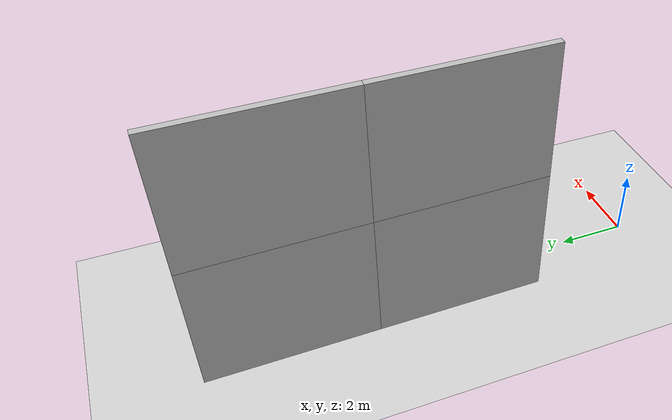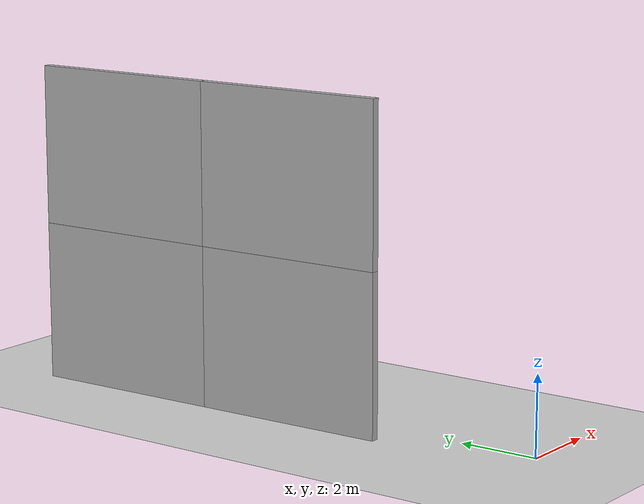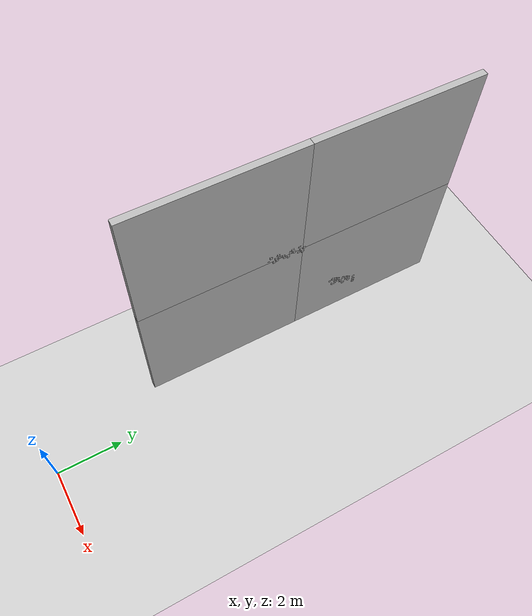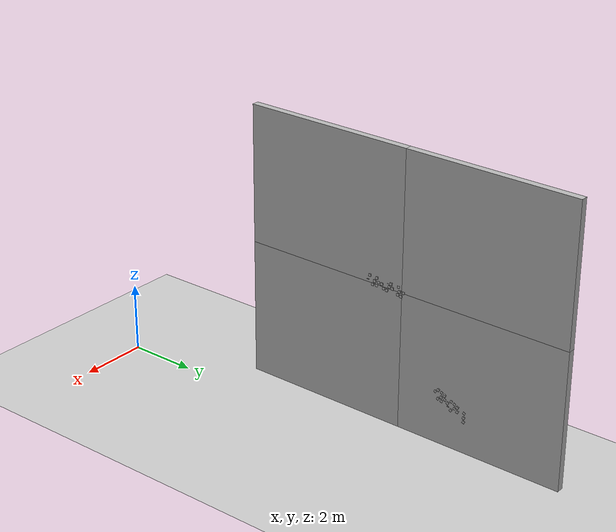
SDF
<sdf version="1.4">
 <world name="default">
  <model name="ground_plane">
   <static>1</static>
   <link name="link">
    <collision name="collision">
     <geometry><plane><normal>0 0 1</normal><size>100 100</size></plane></geometry>
     <surface><friction><ode><mu>100</mu><mu2>50</mu2></ode></friction></surface>
    </collision>
    <visual name="visual">
     <cast_shadows>0</cast_shadows>
     <geometry><plane><normal>0 0 1</normal><size>100 100</size></plane></geometry>
     <material>
      <script><uri>file://media/materials/scripts/gazebo.material</uri><name>Gazebo/Grey</name></script>
     </material>
    </visual>
    <velocity_decay><linear>0</linear><angular>0</angular></velocity_decay>
   </link>
  </model>
  <model name="mud_box_0">
   <static>1</static>
   <link name="link">
    <collision name="collision"><geometry><box><size>8 10 0.2</size></box></geometry></collision>
    <visual name="visual_1">
     <pose>-2 2.5 0 0 -0 0</pose>
     <cast_shadows>0</cast_shadows>
     <geometry><box><size>4 5 0.2</size></box></geometry>
     <material>
      <script>
       <uri>model://mud_box/materials/scripts</uri>
       <uri>model://mud_box/materials/textures</uri>
       <name>vrc/mud</name>
      </script>
     </material>
    </visual>
    <visual name="visual_2">
     <pose>2 2.5 0 0 -0 0</pose>
     <cast_shadows>0</cast_shadows>
     <geometry><box><size>4 5 0.2</size></box></geometry>
     <material>
      <script>
       <uri>model://mud_box/materials/scripts</uri>
       <uri>model://mud_box/materials/textures</uri>
       <name>vrc/mud</name>
      </script>
     </material>
    </visual>
    <visual name="visual_3">
     <pose>2 -2.5 0 0 -0 0</pose>
     <cast_shadows>0</cast_shadows>
     <geometry><box><size>4 5 0.2</size></box></geometry>
     <material>
      <script>
       <uri>model://mud_box/materials/scripts</uri>
       <uri>model://mud_box/materials/textures</uri>
       <name>vrc/mud</name>
      </script>
     </material>
    </visual>
    <visual name="visual_4">
     <pose>-2 -2.5 0 0 -0 0</pose>
     <cast_shadows>0</cast_shadows>
     <geometry><box><size>4 5 0.2</size></box></geometry>
     <material>
      <script>
       <uri>model://mud_box/materials/scripts</uri>
       <uri>model://mud_box/materials/textures</uri>
       <name>vrc/mud</name>
      </script>
     </material>
    </visual>
    <velocity_decay><linear>0</linear><angular>0</angular></velocity_decay>
   </link>
   <pose>-1.2094 8.64163 4.04199 0.9875 1.562 -2.15241</pose>
  </model>
  <model name="frc2016_roughterrain_0">
   <static>1</static>
   <link name="link">
    <visual name="platform">
     <pose>0 0 0.08269 0 -0 0</pose>
     <geometry><box><size>1.27 0.5969 0.003175</size></box></geometry>
    </visual>
    <collision name="platform">
     <pose>0 0 0.08269 0 -0 0</pose>
     <geometry><box><size>1.27 0.5969 0.003175</size></box></geometry>
    </collision>
    <visual name="row1_block1_sm">
     <pose>0.51435 0.1143 0.09698 0 -0 0</pose>
     <geometry><box><size>0.0762 0.0762 0.0254</size></box></geometry>
    </visual>
    <collision name="row1_block1_sm">
     <pose>0.51435 0.1143 0.09698 0 -0 0</pose>
     <geometry><box><size>0.0762 0.0762 0.0254</size></box></geometry>
    </collision>
    <visual name="row1_block2_lg">
     <pose>0.40005 0.1143 0.12238 0 -0 0</pose>
     <geometry><box><size>0.0762 0.0762 0.0762</size></box></geometry>
    </visual>
    <collision name="row1_block2_lg">
     <pose>0.40005 0.1143 0.12238 0 -0 0</pose>
     <geometry><box><size>0.0762 0.0762 0.0762</size></box></geometry>
    </collision>
    <visual name="row1_block3_md">
     <pose>0.28575 0.1143 0.10968 0 -0 0</pose>
     <geometry><box><size>0.0762 0.0762 0.0508</size></box></geometry>
    </visual>
    <collision name="row1_block3_md">
     <pose>0.28575 0.1143 0.10968 0 -0 0</pose>
     <geometry><box><size>0.0762 0.0762 0.0508</size></box></geometry>
    </collision>
    <visual name="row1_block4_sm">
     <pose>0.17145 0.1143 0.09698 0 -0 0</pose>
     <geometry><box><size>0.0762 0.0762 0.0254</size></box></geometry>
    </visual>
    <collision name="row1_block4_sm">
     <pose>0.17145 0.1143 0.09698 0 -0 0</pose>
     <geometry><box><size>0.0762 0.0762 0.0254</size></box></geometry>
    </collision>
    <visual name="row1_block5_md">
     <pose>0.05715 0.1143 0.10968 0 -0 0</pose>
     <geometry><box><size>0.0762 0.0762 0.0508</size></box></geometry>
    </visual>
    <collision name="row1_block5_md">
     <pose>0.05715 0.1143 0.10968 0 -0 0</pose>
     <geometry><box><size>0.0762 0.0762 0.0508</size></box></geometry>
    </collision>
    <visual name="row1_block6_lg">
     <pose>-0.05715 0.1143 0.12238 0 -0 0</pose>
     <geometry><box><size>0.0762 0.0762 0.0762</size></box></geometry>
    </visual>
    <collision name="row1_block6_lg">
     <pose>-0.05715 0.1143 0.12238 0 -0 0</pose>
     <geometry><box><size>0.0762 0.0762 0.0762</size></box></geometry>
    </collision>
    <visual name="row1_block7_sm">
     <pose>-0.17145 0.1143 0.09698 0 -0 0</pose>
     <geometry><box><size>0.0762 0.0762 0.0254</size></box></geometry>
    </visual>
    <collision name="row1_block7_sm">
     <pose>-0.17145 0.1143 0.09698 0 -0 0</pose>
     <geometry><box><size>0.0762 0.0762 0.0254</size></box></geometry>
    </collision>
    <visual name="row1_block8_sm">
     <pose>-0.28575 0.1143 0.09698 0 -0 0</pose>
     <geometry><box><size>0.0762 0.0762 0.0254</size></box></geometry>
    </visual>
    <collision name="row1_block8_sm">
     <pose>-0.28575 0.1143 0.09698 0 -0 0</pose>
     <geometry><box><size>0.0762 0.0762 0.0254</size></box></geometry>
    </collision>
    <visual name="row1_block9_md">
     <pose>-0.40005 0.1143 0.10968 0 -0 0</pose>
     <geometry><box><size>0.0762 0.0762 0.0508</size></box></geometry>
    </visual>
    <collision name="row1_block9_md">
     <pose>-0.40005 0.1143 0.10968 0 -0 0</pose>
     <geometry><box><size>0.0762 0.0762 0.0508</size></box></geometry>
    </collision>
    <visual name="row1_block10_lg">
     <pose>-0.51435 0.1143 0.12238 0 -0 0</pose>
     <geometry><box><size>0.0762 0.0762 0.0762</size></box></geometry>
    </visual>
    <collision name="row1_block10_lg">
     <pose>-0.51435 0.1143 0.12238 0 -0 0</pose>
     <geometry><box><size>0.0762 0.0762 0.0762</size></box></geometry>
    </collision>
    <visual name="row2_block1_md">
     <pose>0.5715 0 0.10968 0 -0 0</pose>
     <geometry><box><size>0.0762 0.0762 0.0508</size></box></geometry>
    </visual>
    <collision name="row2_block1_md">
     <pose>0.5715 0 0.10968 0 -0 0</pose>
     <geometry><box><size>0.0762 0.0762 0.0508</size></box></geometry>
    </collision>
    <visual name="row2_block2_sm">
     <pose>0.4572 0 0.09698 0 -0 0</pose>
     <geometry><box><size>0.0762 0.0762 0.0254</size></box></geometry>
    </visual>
    <collision name="row2_block2_sm">
     <pose>0.4572 0 0.09698 0 -0 0</pose>
     <geometry><box><size>0.0762 0.0762 0.0254</size></box></geometry>
    </collision>
    <visual name="row2_block3_lg">
     <pose>0.3429 0 0.12238 0 -0 0</pose>
     <geometry><box><size>0.0762 0.0762 0.0762</size></box></geometry>
    </visual>
    <collision name="row2_block3_lg">
     <pose>0.3429 0 0.12238 0 -0 0</pose>
     <geometry><box><size>0.0762 0.0762 0.0762</size></box></geometry>
    </collision>
    <visual name="row2_block4_md">
     <pose>0.2286 0 0.10968 0 -0 0</pose>
     <geometry><box><size>0.0762 0.0762 0.0508</size></box></geometry>
    </visual>
    <collision name="row2_block4_md">
     <pose>0.2286 0 0.10968 0 -0 0</pose>
     <geometry><box><size>0.0762 0.0762 0.0508</size></box></geometry>
    </collision>
    <visual name="row2_block5_lg">
     <pose>0.1143 0 0.12238 0 -0 0</pose>
     <geometry><box><size>0.0762 0.0762 0.0762</size></box></geometry>
    </visual>
    <collision name="row2_block5_lg">
     <pose>0.1143 0 0.12238 0 -0 0</pose>
     <geometry><box><size>0.0762 0.0762 0.0762</size></box></geometry>
    </collision>
    <visual name="row2_block6_sm">
     <pose>0 0 0.09698 0 -0 0</pose>
     <geometry><box><size>0.0762 0.0762 0.0254</size></box></geometry>
    </visual>
    <collision name="row2_block6_sm">
     <pose>0 0 0.09698 0 -0 0</pose>
     <geometry><box><size>0.0762 0.0762 0.0254</size></box></geometry>
    </collision>
    <visual name="row2_block7_md">
     <pose>-0.1143 0 0.10968 0 -0 0</pose>
     <geometry><box><size>0.0762 0.0762 0.0508</size></box></geometry>
    </visual>
    <collision name="row2_block7_md">
     <pose>-0.1143 0 0.10968 0 -0 0</pose>
     <geometry><box><size>0.0762 0.0762 0.0508</size></box></geometry>
    </collision>
    <visual name="row2_block8_lg">
     <pose>-0.2286 0 0.12238 0 -0 0</pose>
     <geometry><box><size>0.0762 0.0762 0.0762</size></box></geometry>
    </visual>
    <collision name="row2_block8_lg">
     <pose>-0.2286 0 0.12238 0 -0 0</pose>
     <geometry><box><size>0.0762 0.0762 0.0762</size></box></geometry>
    </collision>
    <visual name="row2_block9_sm">
     <pose>-0.3429 0 0.09698 0 -0 0</pose>
     <geometry><box><size>0.0762 0.0762 0.0254</size></box></geometry>
    </visual>
    <collision name="row2_block9_sm">
     <pose>-0.3429 0 0.09698 0 -0 0</pose>
     <geometry><box><size>0.0762 0.0762 0.0254</size></box></geometry>
    </collision>
    <visual name="row2_block10_lg">
     <pose>-0.4572 0 0.12238 0 -0 0</pose>
     <geometry><box><size>0.0762 0.0762 0.0762</size></box></geometry>
    </visual>
    <collision name="row2_block10_lg">
     <pose>-0.4572 0 0.12238 0 -0 0</pose>
     <geometry><box><size>0.0762 0.0762 0.0762</size></box></geometry>
    </collision>
    <visual name="row2_block11_md">
     <pose>-0.5715 0 0.10968 0 -0 0</pose>
     <geometry><box><size>0.0762 0.0762 0.0508</size></box></geometry>
    </visual>
    <collision name="row2_block11_md">
     <pose>-0.5715 0 0.10968 0 -0 0</pose>
     <geometry><box><size>0.0762 0.0762 0.0508</size></box></geometry>
    </collision>
    <visual name="row3_block1_lg">
     <pose>0.51435 -0.1143 0.12238 0 -0 0</pose>
     <geometry><box><size>0.0762 0.0762 0.0762</size></box></geometry>
    </visual>
    <collision name="row3_block1_lg">
     <pose>0.51435 -0.1143 0.12238 0 -0 0</pose>
     <geometry><box><size>0.0762 0.0762 0.0762</size></box></geometry>
    </collision>
    <visual name="row3_block2_md">
     <pose>0.40005 -0.1143 0.10968 0 -0 0</pose>
     <geometry><box><size>0.0762 0.0762 0.0508</size></box></geometry>
    </visual>
    <collision name="row3_block2_md">
     <pose>0.40005 -0.1143 0.10968 0 -0 0</pose>
     <geometry><box><size>0.0762 0.0762 0.0508</size></box></geometry>
    </collision>
    <visual name="row3_block3_lg">
     <pose>0.28575 -0.1143 0.12238 0 -0 0</pose>
     <geometry><box><size>0.0762 0.0762 0.0762</size></box></geometry>
    </visual>
    <collision name="row3_block3_lg">
     <pose>0.28575 -0.1143 0.12238 0 -0 0</pose>
     <geometry><box><size>0.0762 0.0762 0.0762</size></box></geometry>
    </collision>
    <visual name="row3_block4_sm">
     <pose>0.17145 -0.1143 0.09698 0 -0 0</pose>
     <geometry><box><size>0.0762 0.0762 0.0254</size></box></geometry>
    </visual>
    <collision name="row3_block4_sm">
     <pose>0.17145 -0.1143 0.09698 0 -0 0</pose>
     <geometry><box><size>0.0762 0.0762 0.0254</size></box></geometry>
    </collision>
    <visual name="row3_block5_md">
     <pose>0.05715 -0.1143 0.10968 0 -0 0</pose>
     <geometry><box><size>0.0762 0.0762 0.0508</size></box></geometry>
    </visual>
    <collision name="row3_block5_md">
     <pose>0.05715 -0.1143 0.10968 0 -0 0</pose>
     <geometry><box><size>0.0762 0.0762 0.0508</size></box></geometry>
    </collision>
    <visual name="row3_block6_md">
     <pose>-0.05715 -0.1143 0.10968 0 -0 0</pose>
     <geometry><box><size>0.0762 0.0762 0.0508</size></box></geometry>
    </visual>
    <collision name="row3_block6_md">
     <pose>-0.05715 -0.1143 0.10968 0 -0 0</pose>
     <geometry><box><size>0.0762 0.0762 0.0508</size></box></geometry>
    </collision>
    <visual name="row3_block7_lg">
     <pose>-0.17145 -0.1143 0.12238 0 -0 0</pose>
     <geometry><box><size>0.0762 0.0762 0.0762</size></box></geometry>
    </visual>
    <collision name="row3_block7_lg">
     <pose>-0.17145 -0.1143 0.12238 0 -0 0</pose>
     <geometry><box><size>0.0762 0.0762 0.0762</size></box></geometry>
    </collision>
    <visual name="row3_block8_sm">
     <pose>-0.28575 -0.1143 0.09698 0 -0 0</pose>
     <geometry><box><size>0.0762 0.0762 0.0254</size></box></geometry>
    </visual>
    <collision name="row3_block8_sm">
     <pose>-0.28575 -0.1143 0.09698 0 -0 0</pose>
     <geometry><box><size>0.0762 0.0762 0.0254</size></box></geometry>
    </collision>
    <visual name="row3_block9_md">
     <pose>-0.40005 -0.1143 0.10968 0 -0 0</pose>
     <geometry><box><size>0.0762 0.0762 0.0508</size></box></geometry>
    </visual>
    <collision name="row3_block9_md">
     <pose>-0.40005 -0.1143 0.10968 0 -0 0</pose>
     <geometry><box><size>0.0762 0.0762 0.0508</size></box></geometry>
    </collision>
    <visual name="row3_block10_sm">
     <pose>-0.51435 -0.1143 0.09698 0 -0 0</pose>
     <geometry><box><size>0.0762 0.0762 0.0254</size></box></geometry>
    </visual>
    <collision name="row3_block10_sm">
     <pose>-0.51435 -0.1143 0.09698 0 -0 0</pose>
     <geometry><box><size>0.0762 0.0762 0.0254</size></box></geometry>
    </collision>
    <velocity_decay><linear>0</linear><angular>0</angular></velocity_decay>
   </link>
   <pose>-1.25946 10.3016 1.29726 -1.59145 -0.468069 -1.56148</pose>
  </model>
  <model name="frc2016_roughterrain_4">
   <static>1</static>
   <link name="link">
    <visual name="platform">
     <pose>0 0 0.08269 0 -0 0</pose>
     <geometry><box><size>1.27 0.5969 0.003175</size></box></geometry>
    </visual>
    <collision name="platform">
     <pose>0 0 0.08269 0 -0 0</pose>
     <geometry><box><size>1.27 0.5969 0.003175</size></box></geometry>
    </collision>
    <visual name="row1_block1_sm">
     <pose>0.51435 0.1143 0.09698 0 -0 0</pose>
     <geometry><box><size>0.0762 0.0762 0.0254</size></box></geometry>
    </visual>
    <collision name="row1_block1_sm">
     <pose>0.51435 0.1143 0.09698 0 -0 0</pose>
     <geometry><box><size>0.0762 0.0762 0.0254</size></box></geometry>
    </collision>
    <visual name="row1_block2_lg">
     <pose>0.40005 0.1143 0.12238 0 -0 0</pose>
     <geometry><box><size>0.0762 0.0762 0.0762</size></box></geometry>
    </visual>
    <collision name="row1_block2_lg">
     <pose>0.40005 0.1143 0.12238 0 -0 0</pose>
     <geometry><box><size>0.0762 0.0762 0.0762</size></box></geometry>
    </collision>
    <visual name="row1_block3_md">
     <pose>0.28575 0.1143 0.10968 0 -0 0</pose>
     <geometry><box><size>0.0762 0.0762 0.0508</size></box></geometry>
    </visual>
    <collision name="row1_block3_md">
     <pose>0.28575 0.1143 0.10968 0 -0 0</pose>
     <geometry><box><size>0.0762 0.0762 0.0508</size></box></geometry>
    </collision>
    <visual name="row1_block4_sm">
     <pose>0.17145 0.1143 0.09698 0 -0 0</pose>
     <geometry><box><size>0.0762 0.0762 0.0254</size></box></geometry>
    </visual>
    <collision name="row1_block4_sm">
     <pose>0.17145 0.1143 0.09698 0 -0 0</pose>
     <geometry><box><size>0.0762 0.0762 0.0254</size></box></geometry>
    </collision>
    <visual name="row1_block5_md">
     <pose>0.05715 0.1143 0.10968 0 -0 0</pose>
     <geometry><box><size>0.0762 0.0762 0.0508</size></box></geometry>
    </visual>
    <collision name="row1_block5_md">
     <pose>0.05715 0.1143 0.10968 0 -0 0</pose>
     <geometry><box><size>0.0762 0.0762 0.0508</size></box></geometry>
    </collision>
    <visual name="row1_block6_lg">
     <pose>-0.05715 0.1143 0.12238 0 -0 0</pose>
     <geometry><box><size>0.0762 0.0762 0.0762</size></box></geometry>
    </visual>
    <collision name="row1_block6_lg">
     <pose>-0.05715 0.1143 0.12238 0 -0 0</pose>
     <geometry><box><size>0.0762 0.0762 0.0762</size></box></geometry>
    </collision>
    <visual name="row1_block7_sm">
     <pose>-0.17145 0.1143 0.09698 0 -0 0</pose>
     <geometry><box><size>0.0762 0.0762 0.0254</size></box></geometry>
    </visual>
    <collision name="row1_block7_sm">
     <pose>-0.17145 0.1143 0.09698 0 -0 0</pose>
     <geometry><box><size>0.0762 0.0762 0.0254</size></box></geometry>
    </collision>
    <visual name="row1_block8_sm">
     <pose>-0.28575 0.1143 0.09698 0 -0 0</pose>
     <geometry><box><size>0.0762 0.0762 0.0254</size></box></geometry>
    </visual>
    <collision name="row1_block8_sm">
     <pose>-0.28575 0.1143 0.09698 0 -0 0</pose>
     <geometry><box><size>0.0762 0.0762 0.0254</size></box></geometry>
    </collision>
    <visual name="row1_block9_md">
     <pose>-0.40005 0.1143 0.10968 0 -0 0</pose>
     <geometry><box><size>0.0762 0.0762 0.0508</size></box></geometry>
    </visual>
    <collision name="row1_block9_md">
     <pose>-0.40005 0.1143 0.10968 0 -0 0</pose>
     <geometry><box><size>0.0762 0.0762 0.0508</size></box></geometry>
    </collision>
    <visual name="row1_block10_lg">
     <pose>-0.51435 0.1143 0.12238 0 -0 0</pose>
     <geometry><box><size>0.0762 0.0762 0.0762</size></box></geometry>
    </visual>
    <collision name="row1_block10_lg">
     <pose>-0.51435 0.1143 0.12238 0 -0 0</pose>
     <geometry><box><size>0.0762 0.0762 0.0762</size></box></geometry>
    </collision>
    <visual name="row2_block1_md">
     <pose>0.5715 0 0.10968 0 -0 0</pose>
     <geometry><box><size>0.0762 0.0762 0.0508</size></box></geometry>
    </visual>
    <collision name="row2_block1_md">
     <pose>0.5715 0 0.10968 0 -0 0</pose>
     <geometry><box><size>0.0762 0.0762 0.0508</size></box></geometry>
    </collision>
    <visual name="row2_block2_sm">
     <pose>0.4572 0 0.09698 0 -0 0</pose>
     <geometry><box><size>0.0762 0.0762 0.0254</size></box></geometry>
    </visual>
    <collision name="row2_block2_sm">
     <pose>0.4572 0 0.09698 0 -0 0</pose>
     <geometry><box><size>0.0762 0.0762 0.0254</size></box></geometry>
    </collision>
    <visual name="row2_block3_lg">
     <pose>0.3429 0 0.12238 0 -0 0</pose>
     <geometry><box><size>0.0762 0.0762 0.0762</size></box></geometry>
    </visual>
    <collision name="row2_block3_lg">
     <pose>0.3429 0 0.12238 0 -0 0</pose>
     <geometry><box><size>0.0762 0.0762 0.0762</size></box></geometry>
    </collision>
    <visual name="row2_block4_md">
     <pose>0.2286 0 0.10968 0 -0 0</pose>
     <geometry><box><size>0.0762 0.0762 0.0508</size></box></geometry>
    </visual>
    <collision name="row2_block4_md">
     <pose>0.2286 0 0.10968 0 -0 0</pose>
     <geometry><box><size>0.0762 0.0762 0.0508</size></box></geometry>
    </collision>
    <visual name="row2_block5_lg">
     <pose>0.1143 0 0.12238 0 -0 0</pose>
     <geometry><box><size>0.0762 0.0762 0.0762</size></box></geometry>
    </visual>
    <collision name="row2_block5_lg">
     <pose>0.1143 0 0.12238 0 -0 0</pose>
     <geometry><box><size>0.0762 0.0762 0.0762</size></box></geometry>
    </collision>
    <visual name="row2_block6_sm">
     <pose>0 0 0.09698 0 -0 0</pose>
     <geometry><box><size>0.0762 0.0762 0.0254</size></box></geometry>
    </visual>
    <collision name="row2_block6_sm">
     <pose>0 0 0.09698 0 -0 0</pose>
     <geometry><box><size>0.0762 0.0762 0.0254</size></box></geometry>
    </collision>
    <visual name="row2_block7_md">
     <pose>-0.1143 0 0.10968 0 -0 0</pose>
     <geometry><box><size>0.0762 0.0762 0.0508</size></box></geometry>
    </visual>
    <collision name="row2_block7_md">
     <pose>-0.1143 0 0.10968 0 -0 0</pose>
     <geometry><box><size>0.0762 0.0762 0.0508</size></box></geometry>
    </collision>
    <visual name="row2_block8_lg">
     <pose>-0.2286 0 0.12238 0 -0 0</pose>
     <geometry><box><size>0.0762 0.0762 0.0762</size></box></geometry>
    </visual>
    <collision name="row2_block8_lg">
     <pose>-0.2286 0 0.12238 0 -0 0</pose>
     <geometry><box><size>0.0762 0.0762 0.0762</size></box></geometry>
    </collision>
    <visual name="row2_block9_sm">
     <pose>-0.3429 0 0.09698 0 -0 0</pose>
     <geometry><box><size>0.0762 0.0762 0.0254</size></box></geometry>
    </visual>
    <collision name="row2_block9_sm">
     <pose>-0.3429 0 0.09698 0 -0 0</pose>
     <geometry><box><size>0.0762 0.0762 0.0254</size></box></geometry>
    </collision>
    <visual name="row2_block10_lg">
     <pose>-0.4572 0 0.12238 0 -0 0</pose>
     <geometry><box><size>0.0762 0.0762 0.0762</size></box></geometry>
    </visual>
    <collision name="row2_block10_lg">
     <pose>-0.4572 0 0.12238 0 -0 0</pose>
     <geometry><box><size>0.0762 0.0762 0.0762</size></box></geometry>
    </collision>
    <visual name="row2_block11_md">
     <pose>-0.5715 0 0.10968 0 -0 0</pose>
     <geometry><box><size>0.0762 0.0762 0.0508</size></box></geometry>
    </visual>
    <collision name="row2_block11_md">
     <pose>-0.5715 0 0.10968 0 -0 0</pose>
     <geometry><box><size>0.0762 0.0762 0.0508</size></box></geometry>
    </collision>
    <visual name="row3_block1_lg">
     <pose>0.51435 -0.1143 0.12238 0 -0 0</pose>
     <geometry><box><size>0.0762 0.0762 0.0762</size></box></geometry>
    </visual>
    <collision name="row3_block1_lg">
     <pose>0.51435 -0.1143 0.12238 0 -0 0</pose>
     <geometry><box><size>0.0762 0.0762 0.0762</size></box></geometry>
    </collision>
    <visual name="row3_block2_md">
     <pose>0.40005 -0.1143 0.10968 0 -0 0</pose>
     <geometry><box><size>0.0762 0.0762 0.0508</size></box></geometry>
    </visual>
    <collision name="row3_block2_md">
     <pose>0.40005 -0.1143 0.10968 0 -0 0</pose>
     <geometry><box><size>0.0762 0.0762 0.0508</size></box></geometry>
    </collision>
    <visual name="row3_block3_lg">
     <pose>0.28575 -0.1143 0.12238 0 -0 0</pose>
     <geometry><box><size>0.0762 0.0762 0.0762</size></box></geometry>
    </visual>
    <collision name="row3_block3_lg">
     <pose>0.28575 -0.1143 0.12238 0 -0 0</pose>
     <geometry><box><size>0.0762 0.0762 0.0762</size></box></geometry>
    </collision>
    <visual name="row3_block4_sm">
     <pose>0.17145 -0.1143 0.09698 0 -0 0</pose>
     <geometry><box><size>0.0762 0.0762 0.0254</size></box></geometry>
    </visual>
    <collision name="row3_block4_sm">
     <pose>0.17145 -0.1143 0.09698 0 -0 0</pose>
     <geometry><box><size>0.0762 0.0762 0.0254</size></box></geometry>
    </collision>
    <visual name="row3_block5_md">
     <pose>0.05715 -0.1143 0.10968 0 -0 0</pose>
     <geometry><box><size>0.0762 0.0762 0.0508</size></box></geometry>
    </visual>
    <collision name="row3_block5_md">
     <pose>0.05715 -0.1143 0.10968 0 -0 0</pose>
     <geometry><box><size>0.0762 0.0762 0.0508</size></box></geometry>
    </collision>
    <visual name="row3_block6_md">
     <pose>-0.05715 -0.1143 0.10968 0 -0 0</pose>
     <geometry><box><size>0.0762 0.0762 0.0508</size></box></geometry>
    </visual>
    <collision name="row3_block6_md">
     <pose>-0.05715 -0.1143 0.10968 0 -0 0</pose>
     <geometry><box><size>0.0762 0.0762 0.0508</size></box></geometry>
    </collision>
    <visual name="row3_block7_lg">
     <pose>-0.17145 -0.1143 0.12238 0 -0 0</pose>
     <geometry><box><size>0.0762 0.0762 0.0762</size></box></geometry>
    </visual>
    <collision name="row3_block7_lg">
     <pose>-0.17145 -0.1143 0.12238 0 -0 0</pose>
     <geometry><box><size>0.0762 0.0762 0.0762</size></box></geometry>
    </collision>
    <visual name="row3_block8_sm">
     <pose>-0.28575 -0.1143 0.09698 0 -0 0</pose>
     <geometry><box><size>0.0762 0.0762 0.0254</size></box></geometry>
    </visual>
    <collision name="row3_block8_sm">
     <pose>-0.28575 -0.1143 0.09698 0 -0 0</pose>
     <geometry><box><size>0.0762 0.0762 0.0254</size></box></geometry>
    </collision>
    <visual name="row3_block9_md">
     <pose>-0.40005 -0.1143 0.10968 0 -0 0</pose>
     <geometry><box><size>0.0762 0.0762 0.0508</size></box></geometry>
    </visual>
    <collision name="row3_block9_md">
     <pose>-0.40005 -0.1143 0.10968 0 -0 0</pose>
     <geometry><box><size>0.0762 0.0762 0.0508</size></box></geometry>
    </collision>
    <visual name="row3_block10_sm">
     <pose>-0.51435 -0.1143 0.09698 0 -0 0</pose>
     <geometry><box><size>0.0762 0.0762 0.0254</size></box></geometry>
    </visual>
    <collision name="row3_block10_sm">
     <pose>-0.51435 -0.1143 0.09698 0 -0 0</pose>
     <geometry><box><size>0.0762 0.0762 0.0254</size></box></geometry>
    </collision>
    <velocity_decay><linear>0</linear><angular>0</angular></velocity_decay>
   </link>
   <pose>-1.24171 8.12336 4.10284 -1.55432 -0.08239 -1.57215</pose>
  </model>
 </world>
</sdf>
